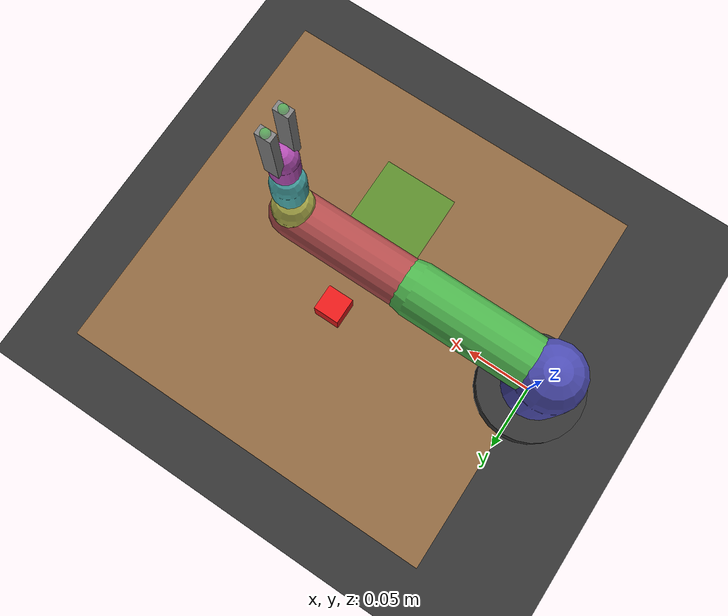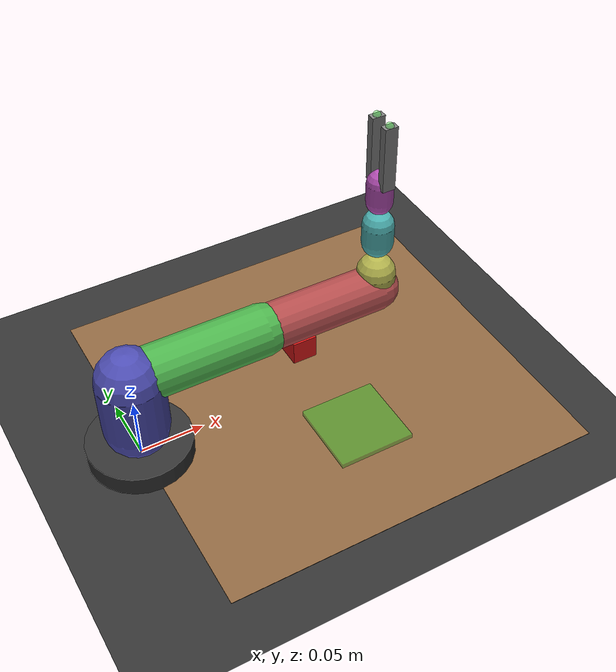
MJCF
<mujoco model="so101_pick_place">
  <include file="../robots/so101/so101.xml" />

  <statistic center="0.1 0 0.15" extent="0.4" />
  <option timestep="0.002" gravity="0 0 -9.81" integrator="implicitfast" />
  <visual>
    <headlight ambient="0.4 0.4 0.4" diffuse="0.8 0.8 0.8" specular="0.1 0.1 0.1" />
  </visual>

  <worldbody>
    <!-- Floor -->
    <geom name="floor" type="plane" size="1 1 0.01" rgba="0.2 0.2 0.2 1"
          contype="1" conaffinity="1" />
    <light pos="0 0 1.5" dir="0 0 -1" diffuse="0.8 0.8 0.8" />

    <!-- Small table (SO-101 workspace is ~0.27m) -->
    <body name="table" pos="0.15 0 -0.01">
      <geom name="table_surface" type="box" size="0.15 0.15 0.01"
            rgba="0.55 0.4 0.25 1" contype="1" conaffinity="1"
            friction="0.8 0.005 0.001" />
    </body>

    <!-- Smaller cube (1cm — appropriate for SO-101 gripper) -->
    <body name="cube" pos="0.15 0.03 0.015">
      <freejoint name="cube_joint" />
      <geom name="cube_geom" type="box" size="0.01 0.01 0.01"
            mass="0.03" rgba="0.9 0.1 0.1 1" condim="4"
            friction="1.0 0.005 0.001" contype="1" conaffinity="1" />
    </body>

    <!-- Target zone -->
    <site name="target_zone" pos="0.15 -0.06 0.005" size="0.03 0.03 0.002"
          rgba="0.1 0.8 0.1 0.4" type="box" />

    <!-- Overhead camera -->
    <camera name="overhead" pos="0.12 0 0.5" xyaxes="1 0 0 0 -1 0" fovy="50" />

    <!-- Front camera -->
    <camera name="front" pos="0.4 0 0.2" xyaxes="0 1 0 -0.3 0 1" fovy="50" />
  </worldbody>
</mujoco>

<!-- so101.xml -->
<mujoco model="so101">
  <!--
    SO-101: 6-DoF low-cost robot arm ($300)
    Modeled from DH parameters (opab/config/robot/so101.yaml)
    Joint limits: STS3215 servos (~±150°)
    Workspace radius: ~0.30m
  -->
  <compiler angle="radian" autolimits="true" />
  <option timestep="0.002" gravity="0 0 -9.81" integrator="implicitfast" />

  <default>
    <default class="so101">
      <joint damping="0.5" armature="0.01" frictionloss="0.1" />
      <geom type="capsule" rgba="0.3 0.3 0.7 1" condim="4"
            friction="0.8 0.005 0.001" />
      <position kp="500" kv="50" ctrlrange="-2.618 2.618" />
    </default>
    <default class="so101_finger">
      <joint damping="5" armature="0.005" />
      <geom type="box" rgba="0.5 0.5 0.5 1" condim="4"
            friction="1.2 0.005 0.001" contype="1" conaffinity="1" />
      <position kp="200" kv="20" ctrlrange="0 0.02" />
    </default>
  </default>

  <worldbody>
    <!-- Base mount (fixed to table) -->
    <body name="base_link" pos="0 0 0">
      <geom type="cylinder" size="0.04 0.015" rgba="0.2 0.2 0.2 1" mass="0.5" />
      <site name="base_site" pos="0 0 0" size="0.005" rgba="1 0 0 0.5" />

      <!-- Joint 1: Base rotation — axis Z, d=0.045 -->
      <body name="link1" pos="0 0 0.03">
        <joint name="joint1" type="hinge" axis="0 0 1"
               range="-2.618 2.618" class="so101" />
        <geom type="capsule" fromto="0 0 0 0 0 0.045" size="0.025" mass="0.15"
              rgba="0.3 0.3 0.7 1" />

        <!-- Joint 2: Shoulder — axis Y, a=-0.104 -->
        <body name="link2" pos="0 0 0.045">
          <joint name="joint2" type="hinge" axis="0 1 0"
                 range="-1.571 1.571" class="so101" />
          <geom type="capsule" fromto="0 0 0 0.104 0 0" size="0.02" mass="0.12"
                rgba="0.3 0.7 0.3 1" />

          <!-- Joint 3: Elbow — axis Y, a=-0.096 -->
          <body name="link3" pos="0.104 0 0">
            <joint name="joint3" type="hinge" axis="0 1 0"
                   range="-2.618 2.618" class="so101" />
            <geom type="capsule" fromto="0 0 0 0.096 0 0" size="0.018" mass="0.10"
                  rgba="0.7 0.3 0.3 1" />

            <!-- Joint 4: Wrist pitch — axis Z, alpha=pi/2 -->
            <body name="link4" pos="0.096 0 0">
              <joint name="joint4" type="hinge" axis="0 0 1"
                     range="-2.618 2.618" class="so101" />
              <geom type="capsule" fromto="0 0 0 0 0 0.015" size="0.015" mass="0.08"
                    rgba="0.7 0.7 0.3 1" />

              <!-- Joint 5: Wrist roll — axis Y, d=0.044 -->
              <body name="link5" pos="0 0 0.044">
                <joint name="joint5" type="hinge" axis="0 1 0"
                       range="-2.618 2.618" class="so101" />
                <geom type="capsule" fromto="0 0 0 0 0 0.015" size="0.012" mass="0.06"
                      rgba="0.3 0.7 0.7 1" />

                <!-- Joint 6: Wrist rotation — axis Z, d=0.036 -->
                <body name="link6" pos="0 0 0.036">
                  <joint name="joint6" type="hinge" axis="0 0 1"
                         range="-2.618 2.618" class="so101" />
                  <geom type="capsule" fromto="0 0 0 0 0 0.015" size="0.01" mass="0.04"
                        rgba="0.7 0.3 0.7 1" />

                  <!-- End-effector site -->
                  <site name="ee_site" pos="0 0 0.015" size="0.008"
                        rgba="1 1 0 1" type="sphere" />

                  <!-- Gripper base -->
                  <body name="gripper_base" pos="0 0 0.015">
                    <!-- Left finger -->
                    <body name="finger_left" pos="0 0.008 0">
                      <joint name="finger_left_joint" type="slide"
                             axis="0 1 0" range="0 0.02" class="so101_finger" />
                      <geom size="0.005 0.003 0.025" pos="0 0 0.025"
                            class="so101_finger" mass="0.02" />
                      <site name="finger_left_site" pos="0 0 0.05"
                            size="0.003" rgba="0 1 0 0.3" />
                    </body>
                    <!-- Right finger -->
                    <body name="finger_right" pos="0 -0.008 0">
                      <joint name="finger_right_joint" type="slide"
                             axis="0 -1 0" range="0 0.02" class="so101_finger" />
                      <geom size="0.005 0.003 0.025" pos="0 0 0.025"
                            class="so101_finger" mass="0.02" />
                      <site name="finger_right_site" pos="0 0 0.05"
                            size="0.003" rgba="0 1 0 0.3" />
                    </body>
                  </body>

                </body>
              </body>
            </body>
          </body>
        </body>
      </body>
    </body>
  </worldbody>

  <!-- Actuators: position control for all joints -->
  <actuator>
    <position name="j1_pos" joint="joint1" class="so101" />
    <position name="j2_pos" joint="joint2" class="so101"
              ctrlrange="-1.571 1.571" />
    <position name="j3_pos" joint="joint3" class="so101" />
    <position name="j4_pos" joint="joint4" class="so101" />
    <position name="j5_pos" joint="joint5" class="so101" />
    <position name="j6_pos" joint="joint6" class="so101" />
    <position name="finger_left_pos" joint="finger_left_joint"
              class="so101_finger" />
    <position name="finger_right_pos" joint="finger_right_joint"
              class="so101_finger" />
  </actuator>

  <!-- Couple the gripper fingers for symmetric motion -->
  <equality>
    <joint joint1="finger_left_joint" joint2="finger_right_joint"
           polycoef="0 1 0 0 0" />
  </equality>

  <sensor>
    <framepos name="ee_pos_sensor" objtype="site" objname="ee_site" />
    <framequat name="ee_quat_sensor" objtype="site" objname="ee_site" />
  </sensor>
</mujoco>
